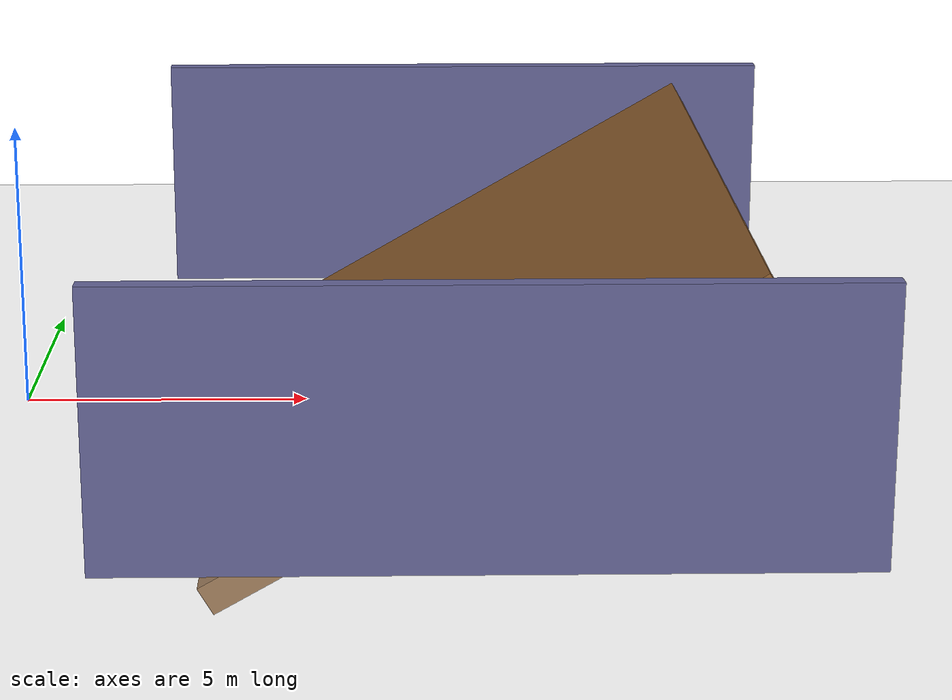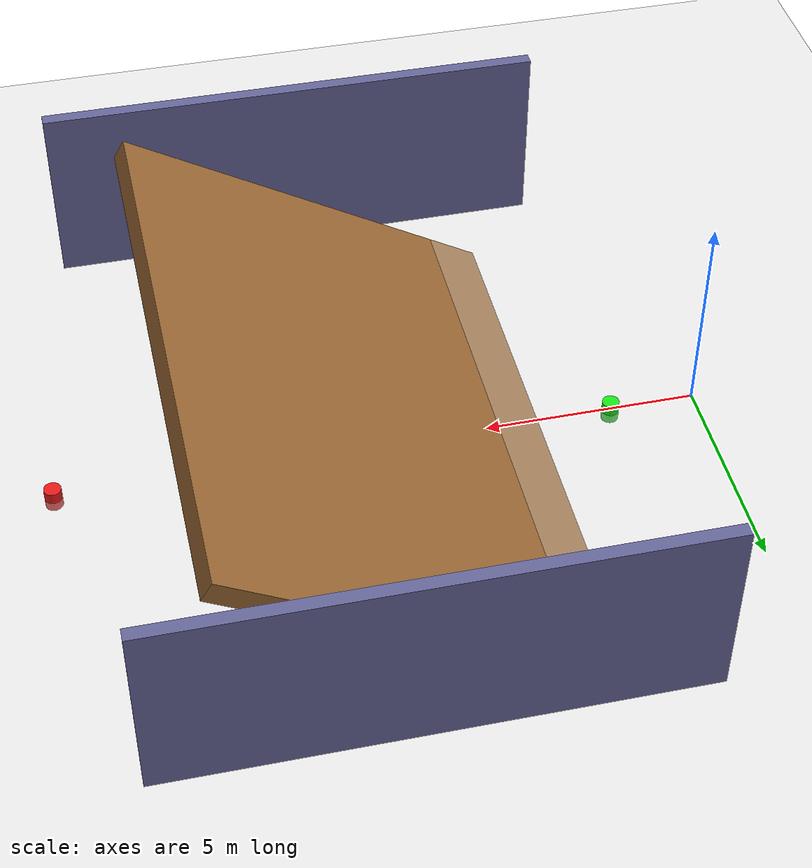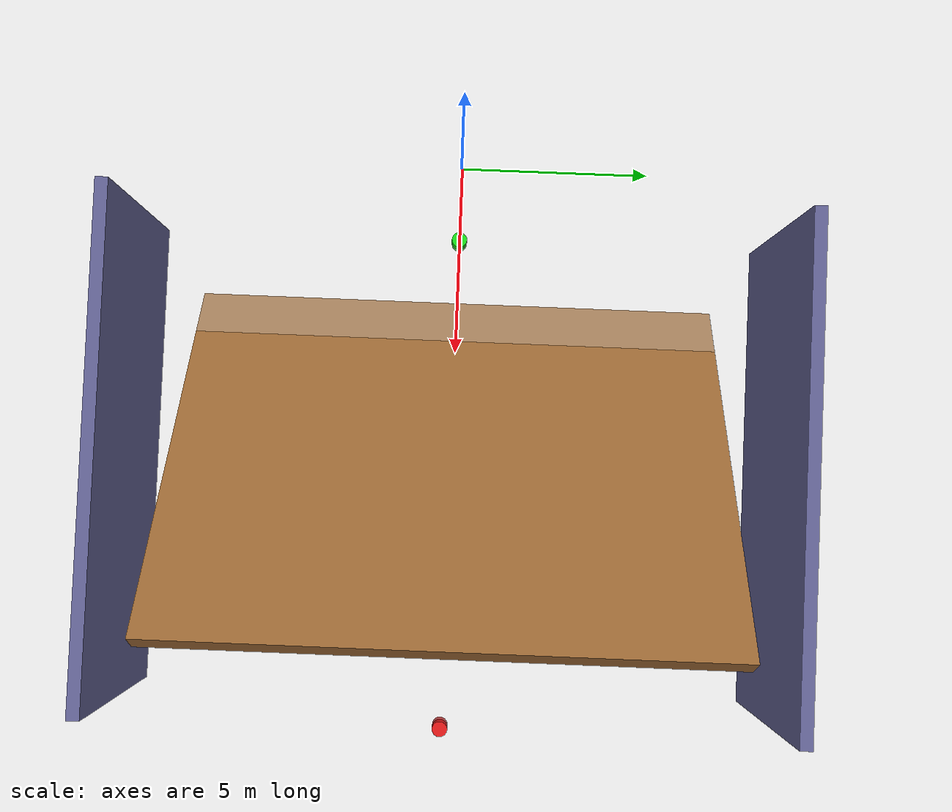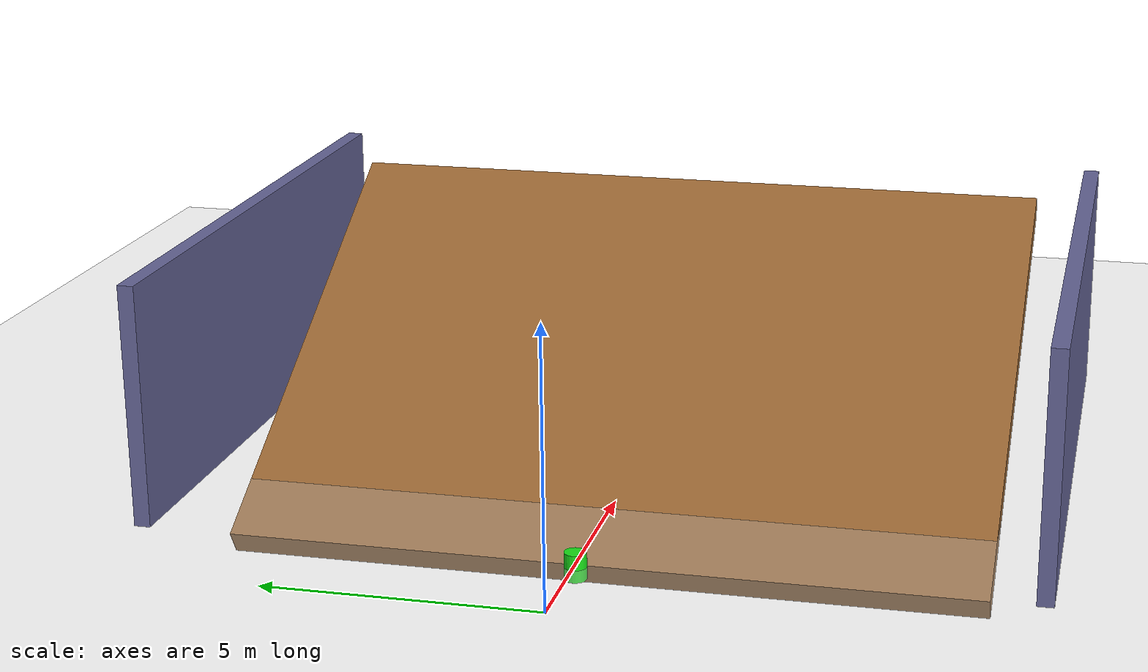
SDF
<?xml version="1.0" ?>
<sdf version="1.6">
  <world name="ramp_slope">

    <physics type="ode">
      <max_step_size>0.001</max_step_size>
      <real_time_factor>1.0</real_time_factor>
      <real_time_update_rate>1000</real_time_update_rate>
      <gravity>0 0 -9.81</gravity>
      <ode>
        <solver><type>quick</type><iters>50</iters><sor>1.3</sor></solver>
        <constraints>
          <cfm>0.0</cfm><erp>0.2</erp>
          <contact_max_correcting_vel>100.0</contact_max_correcting_vel>
          <contact_surface_layer>0.001</contact_surface_layer>
        </constraints>
      </ode>
    </physics>

    <scene>
      <ambient>0.5 0.5 0.5 1.0</ambient>
      <shadows>false</shadows>
      <grid>false</grid>
    </scene>

    <include><uri>model://sun</uri></include>
    <include><uri>model://ground_plane</uri></include>

    <!-- Main ramp: 10m long × 14m wide × 0.5m thick -->
    <!-- pitch = -0.5236 (-30°): rises in +x direction (away from drone) -->
    <!-- center at (8, 0, 1.6) -->
    <!-- Near edge (x≈3): z ≈ 1.6 - 5×sin(30°) = -0.9 (buried in ground) -->
    <!-- Far edge (x≈13): z ≈ 1.6 + 5×sin(30°) = 4.1m (blocks path) -->
    <model name="main_ramp">
      <static>true</static>
      <pose>8 0 1.6 0 -0.5236 0</pose>
      <link name="link">
        <collision name="collision">
          <geometry>
            <box><size>10 14 0.5</size></box>
          </geometry>
        </collision>
        <visual name="visual">
          <geometry>
            <box><size>10 14 0.5</size></box>
          </geometry>
          <material>
            <ambient>0.6 0.4 0.2 1.0</ambient>
            <diffuse>0.6 0.4 0.2 1.0</diffuse>
          </material>
        </visual>
      </link>
    </model>

    <!-- Left side wall: y=-8, 4.5m tall, covers x=2 to x=14 -->
    <model name="side_wall_left">
      <static>true</static>
      <pose>8 -8 2.25 0 0 0</pose>
      <link name="link">
        <collision name="collision">
          <geometry><box><size>12 0.3 4.5</size></box></geometry>
        </collision>
        <visual name="visual">
          <geometry><box><size>12 0.3 4.5</size></box></geometry>
          <material>
            <ambient>0.4 0.4 0.6 1.0</ambient>
            <diffuse>0.4 0.4 0.6 1.0</diffuse>
          </material>
        </visual>
      </link>
    </model>

    <!-- Right side wall: y=+8, 4.5m tall -->
    <model name="side_wall_right">
      <static>true</static>
      <pose>8 8 2.25 0 0 0</pose>
      <link name="link">
        <collision name="collision">
          <geometry><box><size>12 0.3 4.5</size></box></geometry>
        </collision>
        <visual name="visual">
          <geometry><box><size>12 0.3 4.5</size></box></geometry>
          <material>
            <ambient>0.4 0.4 0.6 1.0</ambient>
            <diffuse>0.4 0.4 0.6 1.0</diffuse>
          </material>
        </visual>
      </link>
    </model>

    <!-- Marker at start -->
    <model name="marker_start"><static>true</static><pose>2 0 0 0 0 0</pose>
      <link name="link">
        <collision name="c"><geometry><cylinder><radius>0.2</radius><length>0.5</length></cylinder></geometry></collision>
        <visual name="v"><geometry><cylinder><radius>0.2</radius><length>0.5</length></cylinder></geometry>
          <material><ambient>0.1 0.9 0.1 1</ambient><diffuse>0.1 0.9 0.1 1</diffuse></material></visual>
      </link></model>

    <!-- Marker at goal -->
    <model name="marker_goal"><static>true</static><pose>15 0 0 0 0 0</pose>
      <link name="link">
        <collision name="c"><geometry><cylinder><radius>0.2</radius><length>0.5</length></cylinder></geometry></collision>
        <visual name="v"><geometry><cylinder><radius>0.2</radius><length>0.5</length></cylinder></geometry>
          <material><ambient>0.9 0.1 0.1 1</ambient><diffuse>0.9 0.1 0.1 1</diffuse></material></visual>
      </link></model>

  </world>
</sdf>
